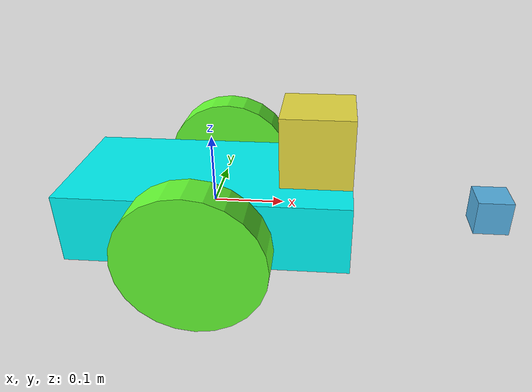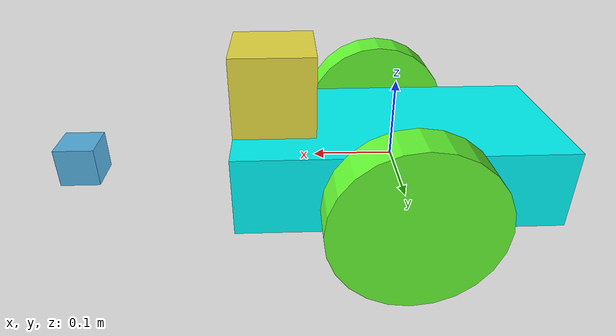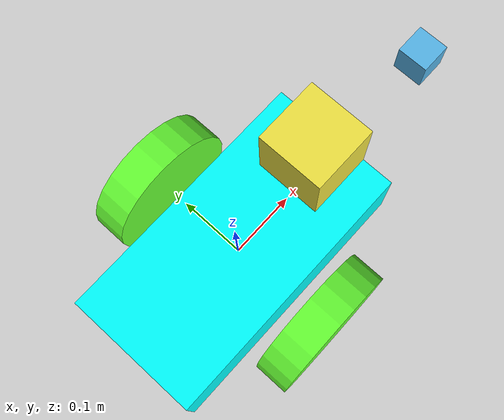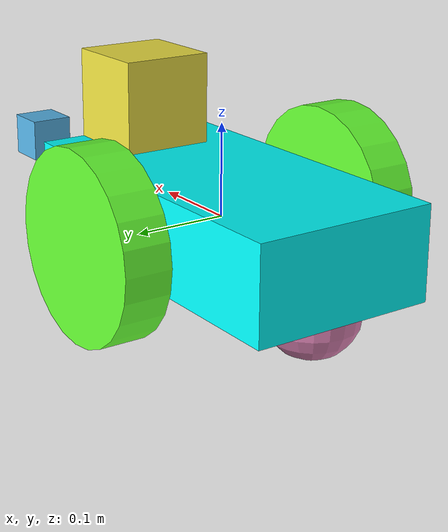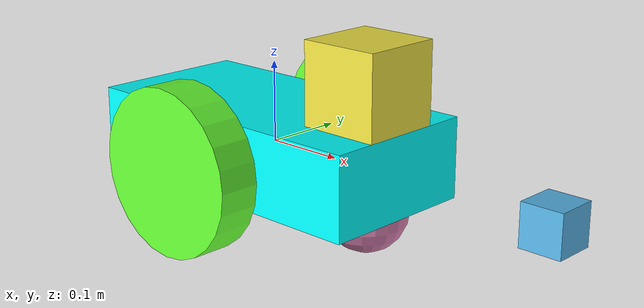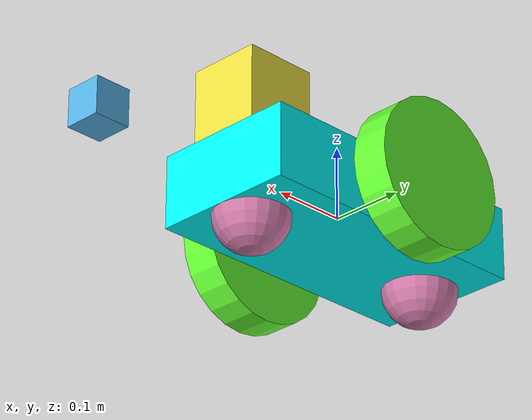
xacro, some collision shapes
<?xml version="1.0"?>

<robot name="udacity_bot" xmlns:xacro="http://www.ros.org/wiki/xacro">
  <xacro:include filename="$(find slam_project)/urdf/udacity_bot.gazebo" />
  <link name="robot_footprint"></link>

  <joint name="robot_footprint_joint" type="fixed">
    <origin xyz="0 0 0" rpy="0 0 0" />
    <parent link="robot_footprint"/>
    <child link="chassis" />
  </joint>

  <joint type="continuous" name="left_wheel_hinge">
    <origin xyz="0 0.15 0" rpy="0 0 0"/>
    <child link="left_wheel"/>
    <parent link="chassis"/>
    <axis xyz="0 1 0" rpy="0 0 0"/>
    <limit effort="10000" velocity="1000"/>
    <dynamics damping="1.0" friction="1.0"/>
  </joint>

  <joint type="continuous" name="right_wheel_hinge">
    <origin xyz="0 -0.15 0" rpy="0 0 0"/>
    <child link="right_wheel"/>
    <parent link="chassis"/>
    <axis xyz="0 1 0" rpy="0 0 0"/>
    <limit effort="10000" velocity="1000"/>
    <dynamics damping="1.0" friction="1.0"/>
  </joint>

  <joint type="fixed" name="camera_joint">
    <origin xyz="0.4 0 0" rpy="0 0 0"/>
    <child link="camera"/>
    <parent link="chassis"/>
  </joint>

  <link name="camera">
    <inertial>
      <mass value="0.1"/>
      <origin xyz="0 0 0" rpy="0 0 0"/>
      <inertia
          ixx="1e-6" ixy="0" ixz="0"
          iyy="1e-6" iyz="0"
          izz="1e-6"
      />
    </inertial>
    <collision name="collision">
      <origin xyz="0 0 0" rpy="0 0 0"/>
      <geometry>
        <box size="0.05 0.05 0.05"/>
      </geometry>
    </collision>
    <visual name="visual">
      <origin xyz="0 0 0" rpy="0 0 0"/>
      <geometry>
        <box size="0.05 0.05 0.05"/>
      </geometry>
    </visual>
  </link>

  <joint type="fixed" name="camera_optical_joint">
    <origin xyz="0 0 0" rpy="-1.57 0 -1.57"/>
    <child link="camera_optical"/>
    <parent link="camera"/>
  </joint>

  <link name="camera_optical">
  </link>

  <joint type="fixed" name="hokuyo_joint">
    <origin xyz="0.15 0 0.1" rpy="0 0 0"/>
    <child link="hokuyo"/>
    <parent link="chassis"/>
  </joint>

  <link name="hokuyo">
    <inertial>
      <mass value="0.1"/>
      <origin xyz="0 0 0" rpy="0 0 0"/>
      <inertia
          ixx="1e-6" ixy="0" ixz="0"
          iyy="1e-6" iyz="0"
          izz="1e-6"
      />
    </inertial>
    <collision name="collision">
      <origin xyz="0 0 0" rpy="0 0 0"/>
      <geometry>
        <box size="0.1 0.1 0.1"/>
      </geometry>
    </collision>
    <visual name="visual">
      <origin xyz="0 0 0" rpy="0 0 0"/>
      <geometry>
        <mesh filename="package://slam_project/meshes/hokuyo.dae"/>
      </geometry>
    </visual>
  </link>

  <link name="left_wheel">
    <inertial>
      <mass value="5.0"/>
      <origin xyz="0.0 0 0" rpy="0 1.5707 1.5707"/>
      <inertia
          ixx="0.1" ixy="0" ixz="0"
          iyy="0.1" iyz="0"
          izz="0.1"
      />
    </inertial>
    <collision name="collision">
      <origin xyz="0.0 0 0" rpy="0 1.5707 1.5707"/>
      <geometry>
        <cylinder radius="0.1" length="0.05"/>
      </geometry>
    </collision>
    <visual name="visual">
      <origin xyz="0.0 0 0" rpy="0 1.5707 1.5707"/>
      <geometry>
        <cylinder radius="0.1" length="0.05"/>
      </geometry>
      <material name="Bright Green">
        <color rgba="0.4 1.0 0.2 1.0"/>
      </material>
    </visual>
  </link>

  <link name="right_wheel">
    <inertial>
      <mass value="5.0"/>
      <origin xyz="0.0 0 0" rpy="0 1.5707 1.5707"/>
      <inertia
          ixx="0.1" ixy="0" ixz="0"
          iyy="0.1" iyz="0"
          izz="0.1"
      />
    </inertial>
    <collision name="collision">
      <origin xyz="0.0 0 0" rpy="0 1.5707 1.5707"/>
      <geometry>
        <cylinder radius="0.1" length="0.05"/>
      </geometry>
    </collision>
    <visual name="visual">
      <origin xyz="0.0 0 0" rpy="0 1.5707 1.5707"/>
      <geometry>
        <cylinder radius="0.1" length="0.05"/>
      </geometry>
      <material name="Bright Green">
        <color rgba="0.4 1.0 0.2 1.0"/>
      </material>
    </visual>
  </link>

  <link name="chassis">
    <pose>0 0 0.1 0 0 0</pose>

    <inertial>
      <mass value="15.0"/>
      <origin xyz="0.0 0 0" rpy=" 0 0 0"/>
      <inertia
          ixx="0.1" ixy="0" ixz="0"
          iyy="0.1" iyz="0"
          izz="0.1"
      />
    </inertial>

    <collision name="collision">
      <origin xyz="0 0 0" rpy=" 0 0 0"/>
      <geometry>
        <box size=".4 .2 .1"/>
      </geometry>
    </collision>

    <visual name="chassis_visual">
      <origin xyz="0 0 0" rpy=" 0 0 0"/>
      <geometry>
        <box size=".4 .2 .1"/>
      </geometry>
      <material name="Cyan">
        <color rgba="0 1.0 1.0 1.0"/>
      </material>
    </visual>

    <collision name="back_caster_collision">
      <origin xyz="-0.15 0 -0.05" rpy=" 0 0 0"/>
      <geometry>
        <sphere radius="0.0499"/>
      </geometry>
    </collision>

    <visual name="back_caster_visual">
      <origin xyz="-0.15 0 -0.05" rpy=" 0 0 0"/>
      <geometry>
        <sphere radius="0.05"/>
      </geometry>
    </visual>

    <collision name="front_caster_collision">
      <origin xyz="0.15 0 -0.05" rpy=" 0 0 0"/>
      <geometry>
        <sphere radius="0.0499"/>
      </geometry>
    </collision>

    <visual name="front_caster_visual">
      <origin xyz="0.15 0 -0.05" rpy=" 0 0 0"/>
      <geometry>
        <sphere radius="0.05"/>
      </geometry>
    </visual>

  </link>

</robot>
